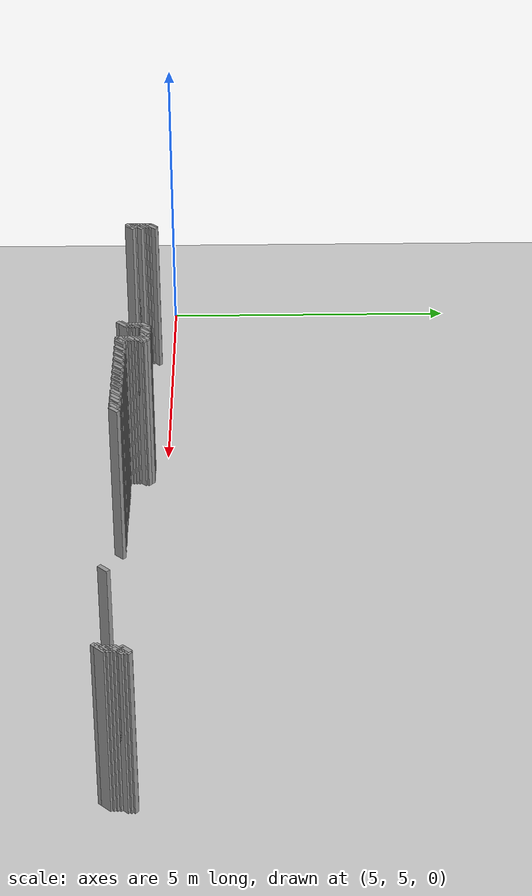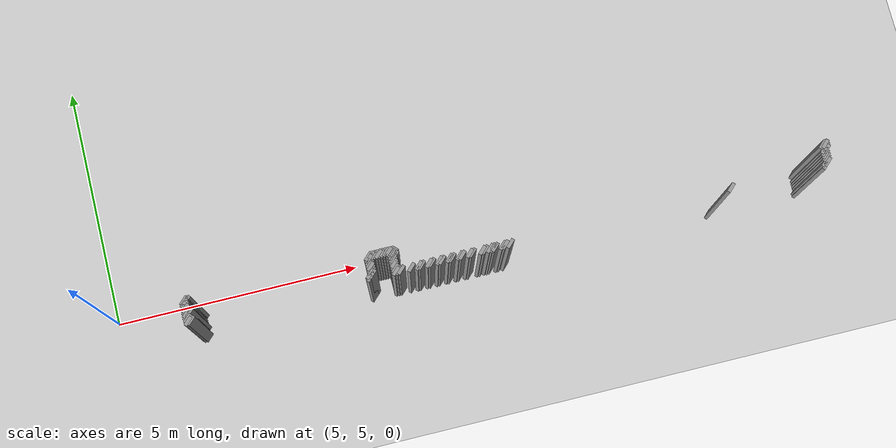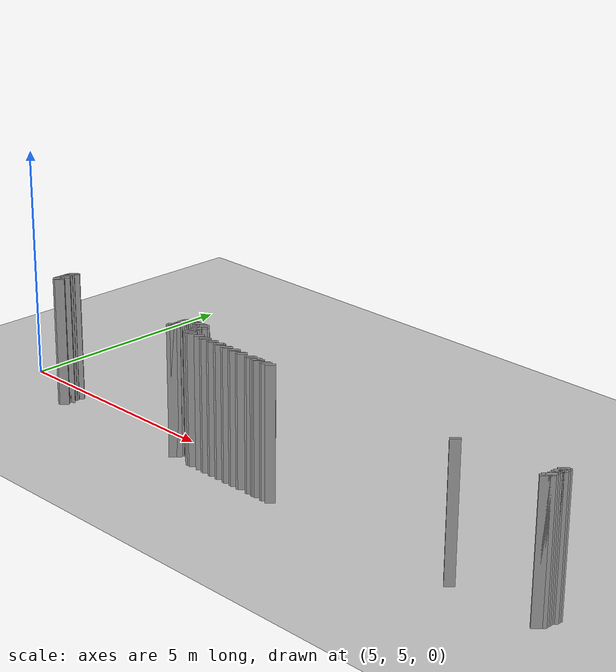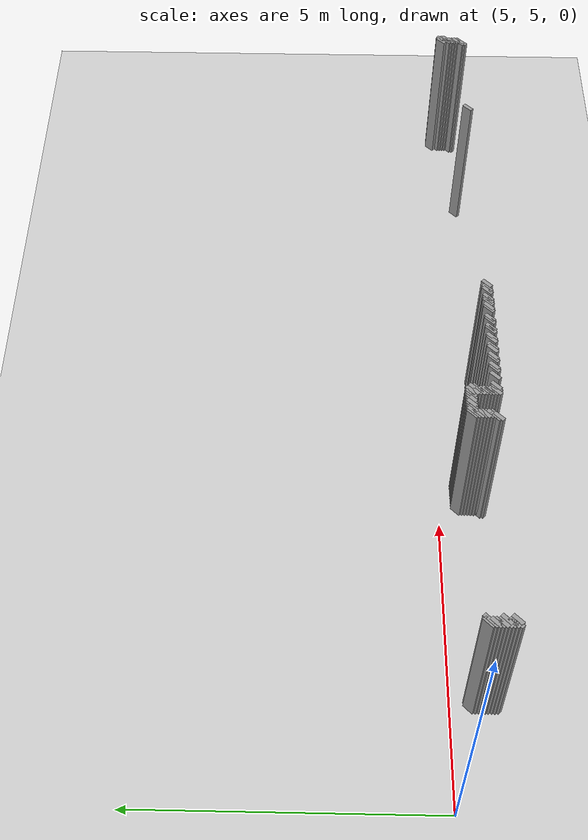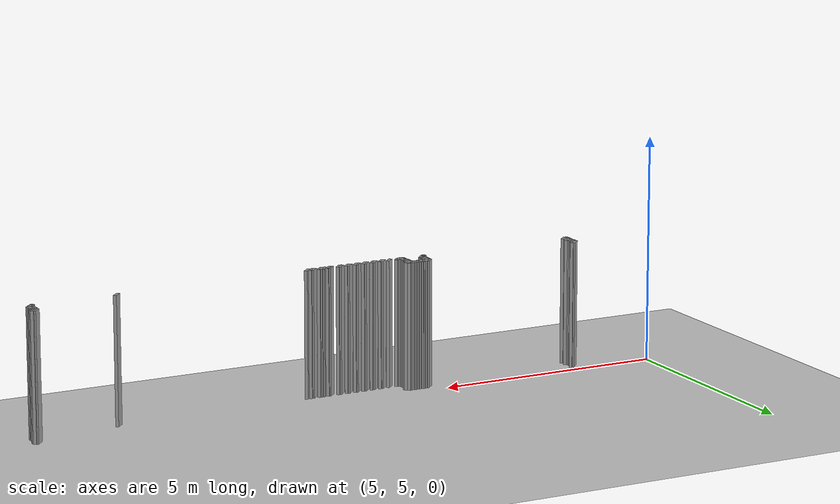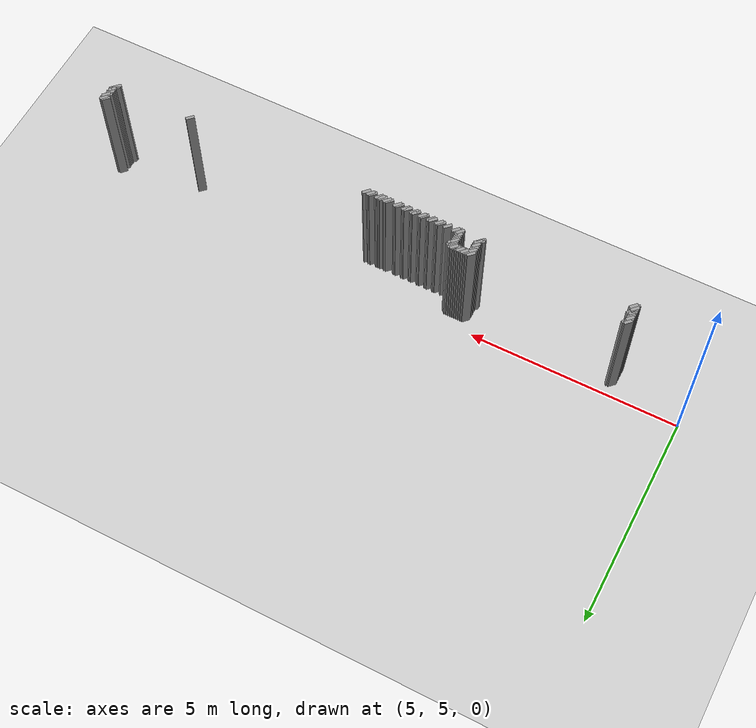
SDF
<sdf version="1.5">
 <world name="default">
  <include><uri>model://ground_plane</uri></include>
  <include><uri>model://sun</uri></include>
  <model name="grey_wall_2101">
   <static>1</static>
   <link name="link">
    <pose>19.35 4.75  1.4 0 0 -0.785398163397</pose>
    <collision name="collision"><geometry><box><size>0.0707106781187 .2  2.8</size></box></geometry></collision>
    <visual name="visual">
     <cast_shadows>0</cast_shadows>
     <geometry><box><size>0.0707106781187 .2  2.8</size></box></geometry>
     <material>
      <script>
       <uri>model://grey_wall/materials/scripts</uri>
       <uri>model://grey_wall/materials/textures</uri>
       <name>vrc/grey_wall</name>
      </script>
     </material>
    </visual>
   </link>
  </model>
  <model name="grey_wall_2102">
   <static>1</static>
   <link name="link">
    <pose>19.4 4.75  1.4 0 0 -0.785398163397</pose>
    <collision name="collision"><geometry><box><size>0.0707106781187 .2  2.8</size></box></geometry></collision>
    <visual name="visual">
     <cast_shadows>0</cast_shadows>
     <geometry><box><size>0.0707106781187 .2  2.8</size></box></geometry>
     <material>
      <script>
       <uri>model://grey_wall/materials/scripts</uri>
       <uri>model://grey_wall/materials/textures</uri>
       <name>vrc/grey_wall</name>
      </script>
     </material>
    </visual>
   </link>
  </model>
  <model name="grey_wall_2103">
   <static>1</static>
   <link name="link">
    <pose>6.7 4.7  1.4 0 0 -0.785398163397</pose>
    <collision name="collision"><geometry><box><size>0.0707106781187 .2  2.8</size></box></geometry></collision>
    <visual name="visual">
     <cast_shadows>0</cast_shadows>
     <geometry><box><size>0.0707106781187 .2  2.8</size></box></geometry>
     <material>
      <script>
       <uri>model://grey_wall/materials/scripts</uri>
       <uri>model://grey_wall/materials/textures</uri>
       <name>vrc/grey_wall</name>
      </script>
     </material>
    </visual>
   </link>
  </model>
  <model name="grey_wall_2104">
   <static>1</static>
   <link name="link">
    <pose>6.75 4.7  1.4 0 0 -0.785398163397</pose>
    <collision name="collision"><geometry><box><size>0.0707106781187 .2  2.8</size></box></geometry></collision>
    <visual name="visual">
     <cast_shadows>0</cast_shadows>
     <geometry><box><size>0.0707106781187 .2  2.8</size></box></geometry>
     <material>
      <script>
       <uri>model://grey_wall/materials/scripts</uri>
       <uri>model://grey_wall/materials/textures</uri>
       <name>vrc/grey_wall</name>
      </script>
     </material>
    </visual>
   </link>
  </model>
  <model name="grey_wall_2105">
   <static>1</static>
   <link name="link">
    <pose>10.3 4.7  1.4 0 0 -0.785398163397</pose>
    <collision name="collision"><geometry><box><size>0.0707106781187 .2  2.8</size></box></geometry></collision>
    <visual name="visual">
     <cast_shadows>0</cast_shadows>
     <geometry><box><size>0.0707106781187 .2  2.8</size></box></geometry>
     <material>
      <script>
       <uri>model://grey_wall/materials/scripts</uri>
       <uri>model://grey_wall/materials/textures</uri>
       <name>vrc/grey_wall</name>
      </script>
     </material>
    </visual>
   </link>
  </model>
  <model name="grey_wall_2106">
   <static>1</static>
   <link name="link">
    <pose>10.35 4.7  1.4 0 0 -0.785398163397</pose>
    <collision name="collision"><geometry><box><size>0.0707106781187 .2  2.8</size></box></geometry></collision>
    <visual name="visual">
     <cast_shadows>0</cast_shadows>
     <geometry><box><size>0.0707106781187 .2  2.8</size></box></geometry>
     <material>
      <script>
       <uri>model://grey_wall/materials/scripts</uri>
       <uri>model://grey_wall/materials/textures</uri>
       <name>vrc/grey_wall</name>
      </script>
     </material>
    </visual>
   </link>
  </model>
  <model name="grey_wall_2107">
   <static>1</static>
   <link name="link">
    <pose>10.4 4.7  1.4 0 0 -0.785398163397</pose>
    <collision name="collision"><geometry><box><size>0.0707106781187 .2  2.8</size></box></geometry></collision>
    <visual name="visual">
     <cast_shadows>0</cast_shadows>
     <geometry><box><size>0.0707106781187 .2  2.8</size></box></geometry>
     <material>
      <script>
       <uri>model://grey_wall/materials/scripts</uri>
       <uri>model://grey_wall/materials/textures</uri>
       <name>vrc/grey_wall</name>
      </script>
     </material>
    </visual>
   </link>
  </model>
  <model name="grey_wall_2108">
   <static>1</static>
   <link name="link">
    <pose>10.45 4.7  1.4 0 0 -0.785398163397</pose>
    <collision name="collision"><geometry><box><size>0.0707106781187 .2  2.8</size></box></geometry></collision>
    <visual name="visual">
     <cast_shadows>0</cast_shadows>
     <geometry><box><size>0.0707106781187 .2  2.8</size></box></geometry>
     <material>
      <script>
       <uri>model://grey_wall/materials/scripts</uri>
       <uri>model://grey_wall/materials/textures</uri>
       <name>vrc/grey_wall</name>
      </script>
     </material>
    </visual>
   </link>
  </model>
  <model name="grey_wall_2109">
   <static>1</static>
   <link name="link">
    <pose>10.5 4.7  1.4 0 0 -0.785398163397</pose>
    <collision name="collision"><geometry><box><size>0.0707106781187 .2  2.8</size></box></geometry></collision>
    <visual name="visual">
     <cast_shadows>0</cast_shadows>
     <geometry><box><size>0.0707106781187 .2  2.8</size></box></geometry>
     <material>
      <script>
       <uri>model://grey_wall/materials/scripts</uri>
       <uri>model://grey_wall/materials/textures</uri>
       <name>vrc/grey_wall</name>
      </script>
     </material>
    </visual>
   </link>
  </model>
  <model name="grey_wall_2110">
   <static>1</static>
   <link name="link">
    <pose>10.55 4.7  1.4 0 0 -0.785398163397</pose>
    <collision name="collision"><geometry><box><size>0.0707106781187 .2  2.8</size></box></geometry></collision>
    <visual name="visual">
     <cast_shadows>0</cast_shadows>
     <geometry><box><size>0.0707106781187 .2  2.8</size></box></geometry>
     <material>
      <script>
       <uri>model://grey_wall/materials/scripts</uri>
       <uri>model://grey_wall/materials/textures</uri>
       <name>vrc/grey_wall</name>
      </script>
     </material>
    </visual>
   </link>
  </model>
  <model name="grey_wall_2111">
   <static>1</static>
   <link name="link">
    <pose>10.6 4.7  1.4 0 0 -0.785398163397</pose>
    <collision name="collision"><geometry><box><size>0.0707106781187 .2  2.8</size></box></geometry></collision>
    <visual name="visual">
     <cast_shadows>0</cast_shadows>
     <geometry><box><size>0.0707106781187 .2  2.8</size></box></geometry>
     <material>
      <script>
       <uri>model://grey_wall/materials/scripts</uri>
       <uri>model://grey_wall/materials/textures</uri>
       <name>vrc/grey_wall</name>
      </script>
     </material>
    </visual>
   </link>
  </model>
  <model name="grey_wall_2112">
   <static>1</static>
   <link name="link">
    <pose>10.65 4.7  1.4 0 0 -0.785398163397</pose>
    <collision name="collision"><geometry><box><size>0.0707106781187 .2  2.8</size></box></geometry></collision>
    <visual name="visual">
     <cast_shadows>0</cast_shadows>
     <geometry><box><size>0.0707106781187 .2  2.8</size></box></geometry>
     <material>
      <script>
       <uri>model://grey_wall/materials/scripts</uri>
       <uri>model://grey_wall/materials/textures</uri>
       <name>vrc/grey_wall</name>
      </script>
     </material>
    </visual>
   </link>
  </model>
  <model name="grey_wall_2113">
   <static>1</static>
   <link name="link">
    <pose>10.7 4.7  1.4 0 0 -0.785398163397</pose>
    <collision name="collision"><geometry><box><size>0.0707106781187 .2  2.8</size></box></geometry></collision>
    <visual name="visual">
     <cast_shadows>0</cast_shadows>
     <geometry><box><size>0.0707106781187 .2  2.8</size></box></geometry>
     <material>
      <script>
       <uri>model://grey_wall/materials/scripts</uri>
       <uri>model://grey_wall/materials/textures</uri>
       <name>vrc/grey_wall</name>
      </script>
     </material>
    </visual>
   </link>
  </model>
  <model name="grey_wall_2114">
   <static>1</static>
   <link name="link">
    <pose>10.75 4.7  1.4 0 0 -0.785398163397</pose>
    <collision name="collision"><geometry><box><size>0.0707106781187 .2  2.8</size></box></geometry></collision>
    <visual name="visual">
     <cast_shadows>0</cast_shadows>
     <geometry><box><size>0.0707106781187 .2  2.8</size></box></geometry>
     <material>
      <script>
       <uri>model://grey_wall/materials/scripts</uri>
       <uri>model://grey_wall/materials/textures</uri>
       <name>vrc/grey_wall</name>
      </script>
     </material>
    </visual>
   </link>
  </model>
  <model name="grey_wall_2115">
   <static>1</static>
   <link name="link">
    <pose>19.4 4.7  1.4 0 0 -0.785398163397</pose>
    <collision name="collision"><geometry><box><size>0.0707106781187 .2  2.8</size></box></geometry></collision>
    <visual name="visual">
     <cast_shadows>0</cast_shadows>
     <geometry><box><size>0.0707106781187 .2  2.8</size></box></geometry>
     <material>
      <script>
       <uri>model://grey_wall/materials/scripts</uri>
       <uri>model://grey_wall/materials/textures</uri>
       <name>vrc/grey_wall</name>
      </script>
     </material>
    </visual>
   </link>
  </model>
  <model name="grey_wall_2116">
   <static>1</static>
   <link name="link">
    <pose>6.7 4.65  1.4 0 0 -0.785398163397</pose>
    <collision name="collision"><geometry><box><size>0.0707106781187 .2  2.8</size></box></geometry></collision>
    <visual name="visual">
     <cast_shadows>0</cast_shadows>
     <geometry><box><size>0.0707106781187 .2  2.8</size></box></geometry>
     <material>
      <script>
       <uri>model://grey_wall/materials/scripts</uri>
       <uri>model://grey_wall/materials/textures</uri>
       <name>vrc/grey_wall</name>
      </script>
     </material>
    </visual>
   </link>
  </model>
  <model name="grey_wall_2117">
   <static>1</static>
   <link name="link">
    <pose>10.3 4.65  1.4 0 0 -0.785398163397</pose>
    <collision name="collision"><geometry><box><size>0.0707106781187 .2  2.8</size></box></geometry></collision>
    <visual name="visual">
     <cast_shadows>0</cast_shadows>
     <geometry><box><size>0.0707106781187 .2  2.8</size></box></geometry>
     <material>
      <script>
       <uri>model://grey_wall/materials/scripts</uri>
       <uri>model://grey_wall/materials/textures</uri>
       <name>vrc/grey_wall</name>
      </script>
     </material>
    </visual>
   </link>
  </model>
  <model name="grey_wall_2118">
   <static>1</static>
   <link name="link">
    <pose>10.75 4.65  1.4 0 0 -0.785398163397</pose>
    <collision name="collision"><geometry><box><size>0.0707106781187 .2  2.8</size></box></geometry></collision>
    <visual name="visual">
     <cast_shadows>0</cast_shadows>
     <geometry><box><size>0.0707106781187 .2  2.8</size></box></geometry>
     <material>
      <script>
       <uri>model://grey_wall/materials/scripts</uri>
       <uri>model://grey_wall/materials/textures</uri>
       <name>vrc/grey_wall</name>
      </script>
     </material>
    </visual>
   </link>
  </model>
  <model name="grey_wall_2119">
   <static>1</static>
   <link name="link">
    <pose>10.8 4.65  1.4 0 0 -0.785398163397</pose>
    <collision name="collision"><geometry><box><size>0.0707106781187 .2  2.8</size></box></geometry></collision>
    <visual name="visual">
     <cast_shadows>0</cast_shadows>
     <geometry><box><size>0.0707106781187 .2  2.8</size></box></geometry>
     <material>
      <script>
       <uri>model://grey_wall/materials/scripts</uri>
       <uri>model://grey_wall/materials/textures</uri>
       <name>vrc/grey_wall</name>
      </script>
     </material>
    </visual>
   </link>
  </model>
  <model name="grey_wall_2120">
   <static>1</static>
   <link name="link">
    <pose>19.35 4.65  1.4 0 0 -0.785398163397</pose>
    <collision name="collision"><geometry><box><size>0.0707106781187 .2  2.8</size></box></geometry></collision>
    <visual name="visual">
     <cast_shadows>0</cast_shadows>
     <geometry><box><size>0.0707106781187 .2  2.8</size></box></geometry>
     <material>
      <script>
       <uri>model://grey_wall/materials/scripts</uri>
       <uri>model://grey_wall/materials/textures</uri>
       <name>vrc/grey_wall</name>
      </script>
     </material>
    </visual>
   </link>
  </model>
  <model name="grey_wall_2121">
   <static>1</static>
   <link name="link">
    <pose>19.4 4.65  1.4 0 0 -0.785398163397</pose>
    <collision name="collision"><geometry><box><size>0.0707106781187 .2  2.8</size></box></geometry></collision>
    <visual name="visual">
     <cast_shadows>0</cast_shadows>
     <geometry><box><size>0.0707106781187 .2  2.8</size></box></geometry>
     <material>
      <script>
       <uri>model://grey_wall/materials/scripts</uri>
       <uri>model://grey_wall/materials/textures</uri>
       <name>vrc/grey_wall</name>
      </script>
     </material>
    </visual>
   </link>
  </model>
  <model name="grey_wall_2122">
   <static>1</static>
   <link name="link">
    <pose>6.7 4.6  1.4 0 0 -0.785398163397</pose>
    <collision name="collision"><geometry><box><size>0.0707106781187 .2  2.8</size></box></geometry></collision>
    <visual name="visual">
     <cast_shadows>0</cast_shadows>
     <geometry><box><size>0.0707106781187 .2  2.8</size></box></geometry>
     <material>
      <script>
       <uri>model://grey_wall/materials/scripts</uri>
       <uri>model://grey_wall/materials/textures</uri>
       <name>vrc/grey_wall</name>
      </script>
     </material>
    </visual>
   </link>
  </model>
  <model name="grey_wall_2123">
   <static>1</static>
   <link name="link">
    <pose>10.3 4.6  1.4 0 0 -0.785398163397</pose>
    <collision name="collision"><geometry><box><size>0.0707106781187 .2  2.8</size></box></geometry></collision>
    <visual name="visual">
     <cast_shadows>0</cast_shadows>
     <geometry><box><size>0.0707106781187 .2  2.8</size></box></geometry>
     <material>
      <script>
       <uri>model://grey_wall/materials/scripts</uri>
       <uri>model://grey_wall/materials/textures</uri>
       <name>vrc/grey_wall</name>
      </script>
     </material>
    </visual>
   </link>
  </model>
  <model name="grey_wall_2124">
   <static>1</static>
   <link name="link">
    <pose>10.75 4.6  1.4 0 0 -0.785398163397</pose>
    <collision name="collision"><geometry><box><size>0.0707106781187 .2  2.8</size></box></geometry></collision>
    <visual name="visual">
     <cast_shadows>0</cast_shadows>
     <geometry><box><size>0.0707106781187 .2  2.8</size></box></geometry>
     <material>
      <script>
       <uri>model://grey_wall/materials/scripts</uri>
       <uri>model://grey_wall/materials/textures</uri>
       <name>vrc/grey_wall</name>
      </script>
     </material>
    </visual>
   </link>
  </model>
  <model name="grey_wall_2125">
   <static>1</static>
   <link name="link">
    <pose>10.8 4.6  1.4 0 0 -0.785398163397</pose>
    <collision name="collision"><geometry><box><size>0.0707106781187 .2  2.8</size></box></geometry></collision>
    <visual name="visual">
     <cast_shadows>0</cast_shadows>
     <geometry><box><size>0.0707106781187 .2  2.8</size></box></geometry>
     <material>
      <script>
       <uri>model://grey_wall/materials/scripts</uri>
       <uri>model://grey_wall/materials/textures</uri>
       <name>vrc/grey_wall</name>
      </script>
     </material>
    </visual>
   </link>
  </model>
  <model name="grey_wall_2126">
   <static>1</static>
   <link name="link">
    <pose>19.35 4.6  1.4 0 0 -0.785398163397</pose>
    <collision name="collision"><geometry><box><size>0.0707106781187 .2  2.8</size></box></geometry></collision>
    <visual name="visual">
     <cast_shadows>0</cast_shadows>
     <geometry><box><size>0.0707106781187 .2  2.8</size></box></geometry>
     <material>
      <script>
       <uri>model://grey_wall/materials/scripts</uri>
       <uri>model://grey_wall/materials/textures</uri>
       <name>vrc/grey_wall</name>
      </script>
     </material>
    </visual>
   </link>
  </model>
  <model name="grey_wall_2127">
   <static>1</static>
   <link name="link">
    <pose>6.7 4.55  1.4 0 0 -0.785398163397</pose>
    <collision name="collision"><geometry><box><size>0.0707106781187 .2  2.8</size></box></geometry></collision>
    <visual name="visual">
     <cast_shadows>0</cast_shadows>
     <geometry><box><size>0.0707106781187 .2  2.8</size></box></geometry>
     <material>
      <script>
       <uri>model://grey_wall/materials/scripts</uri>
       <uri>model://grey_wall/materials/textures</uri>
       <name>vrc/grey_wall</name>
      </script>
     </material>
    </visual>
   </link>
  </model>
  <model name="grey_wall_2128">
   <static>1</static>
   <link name="link">
    <pose>10.3 4.55  1.4 0 0 -0.785398163397</pose>
    <collision name="collision"><geometry><box><size>0.0707106781187 .2  2.8</size></box></geometry></collision>
    <visual name="visual">
     <cast_shadows>0</cast_shadows>
     <geometry><box><size>0.0707106781187 .2  2.8</size></box></geometry>
     <material>
      <script>
       <uri>model://grey_wall/materials/scripts</uri>
       <uri>model://grey_wall/materials/textures</uri>
       <name>vrc/grey_wall</name>
      </script>
     </material>
    </visual>
   </link>
  </model>
  <model name="grey_wall_2129">
   <static>1</static>
   <link name="link">
    <pose>10.75 4.55  1.4 0 0 -0.785398163397</pose>
    <collision name="collision"><geometry><box><size>0.0707106781187 .2  2.8</size></box></geometry></collision>
    <visual name="visual">
     <cast_shadows>0</cast_shadows>
     <geometry><box><size>0.0707106781187 .2  2.8</size></box></geometry>
     <material>
      <script>
       <uri>model://grey_wall/materials/scripts</uri>
       <uri>model://grey_wall/materials/textures</uri>
       <name>vrc/grey_wall</name>
      </script>
     </material>
    </visual>
   </link>
  </model>
  <model name="grey_wall_2130">
   <static>1</static>
   <link name="link">
    <pose>19.35 4.55  1.4 0 0 -0.785398163397</pose>
    <collision name="collision"><geometry><box><size>0.0707106781187 .2  2.8</size></box></geometry></collision>
    <visual name="visual">
     <cast_shadows>0</cast_shadows>
     <geometry><box><size>0.0707106781187 .2  2.8</size></box></geometry>
     <material>
      <script>
       <uri>model://grey_wall/materials/scripts</uri>
       <uri>model://grey_wall/materials/textures</uri>
       <name>vrc/grey_wall</name>
      </script>
     </material>
    </visual>
   </link>
  </model>
  <model name="grey_wall_2131">
   <static>1</static>
   <link name="link">
    <pose>6.7 4.5  1.4 0 0 -0.785398163397</pose>
    <collision name="collision"><geometry><box><size>0.0707106781187 .2  2.8</size></box></geometry></collision>
    <visual name="visual">
     <cast_shadows>0</cast_shadows>
     <geometry><box><size>0.0707106781187 .2  2.8</size></box></geometry>
     <material>
      <script>
       <uri>model://grey_wall/materials/scripts</uri>
       <uri>model://grey_wall/materials/textures</uri>
       <name>vrc/grey_wall</name>
      </script>
     </material>
    </visual>
   </link>
  </model>
  <model name="grey_wall_2132">
   <static>1</static>
   <link name="link">
    <pose>10.3 4.5  1.4 0 0 -0.785398163397</pose>
    <collision name="collision"><geometry><box><size>0.0707106781187 .2  2.8</size></box></geometry></collision>
    <visual name="visual">
     <cast_shadows>0</cast_shadows>
     <geometry><box><size>0.0707106781187 .2  2.8</size></box></geometry>
     <material>
      <script>
       <uri>model://grey_wall/materials/scripts</uri>
       <uri>model://grey_wall/materials/textures</uri>
       <name>vrc/grey_wall</name>
      </script>
     </material>
    </visual>
   </link>
  </model>
  <model name="grey_wall_2133">
   <static>1</static>
   <link name="link">
    <pose>10.75 4.5  1.4 0 0 -0.785398163397</pose>
    <collision name="collision"><geometry><box><size>0.0707106781187 .2  2.8</size></box></geometry></collision>
    <visual name="visual">
     <cast_shadows>0</cast_shadows>
     <geometry><box><size>0.0707106781187 .2  2.8</size></box></geometry>
     <material>
      <script>
       <uri>model://grey_wall/materials/scripts</uri>
       <uri>model://grey_wall/materials/textures</uri>
       <name>vrc/grey_wall</name>
      </script>
     </material>
    </visual>
   </link>
  </model>
  <model name="grey_wall_2134">
   <static>1</static>
   <link name="link">
    <pose>19.35 4.5  1.4 0 0 -0.785398163397</pose>
    <collision name="collision"><geometry><box><size>0.0707106781187 .2  2.8</size></box></geometry></collision>
    <visual name="visual">
     <cast_shadows>0</cast_shadows>
     <geometry><box><size>0.0707106781187 .2  2.8</size></box></geometry>
     <material>
      <script>
       <uri>model://grey_wall/materials/scripts</uri>
       <uri>model://grey_wall/materials/textures</uri>
       <name>vrc/grey_wall</name>
      </script>
     </material>
    </visual>
   </link>
  </model>
  <model name="grey_wall_2135">
   <static>1</static>
   <link name="link">
    <pose>6.7 4.45  1.4 0 0 -0.785398163397</pose>
    <collision name="collision"><geometry><box><size>0.0707106781187 .2  2.8</size></box></geometry></collision>
    <visual name="visual">
     <cast_shadows>0</cast_shadows>
     <geometry><box><size>0.0707106781187 .2  2.8</size></box></geometry>
     <material>
      <script>
       <uri>model://grey_wall/materials/scripts</uri>
       <uri>model://grey_wall/materials/textures</uri>
       <name>vrc/grey_wall</name>
      </script>
     </material>
    </visual>
   </link>
  </model>
  <model name="grey_wall_2136">
   <static>1</static>
   <link name="link">
    <pose>6.75 4.45  1.4 0 0 -0.785398163397</pose>
    <collision name="collision"><geometry><box><size>0.0707106781187 .2  2.8</size></box></geometry></collision>
    <visual name="visual">
     <cast_shadows>0</cast_shadows>
     <geometry><box><size>0.0707106781187 .2  2.8</size></box></geometry>
     <material>
      <script>
       <uri>model://grey_wall/materials/scripts</uri>
       <uri>model://grey_wall/materials/textures</uri>
       <name>vrc/grey_wall</name>
      </script>
     </material>
    </visual>
   </link>
  </model>
  <model name="grey_wall_2137">
   <static>1</static>
   <link name="link">
    <pose>10.3 4.45  1.4 0 0 -0.785398163397</pose>
    <collision name="collision"><geometry><box><size>0.0707106781187 .2  2.8</size></box></geometry></collision>
    <visual name="visual">
     <cast_shadows>0</cast_shadows>
     <geometry><box><size>0.0707106781187 .2  2.8</size></box></geometry>
     <material>
      <script>
       <uri>model://grey_wall/materials/scripts</uri>
       <uri>model://grey_wall/materials/textures</uri>
       <name>vrc/grey_wall</name>
      </script>
     </material>
    </visual>
   </link>
  </model>
  <model name="grey_wall_2138">
   <static>1</static>
   <link name="link">
    <pose>10.75 4.45  1.4 0 0 -0.785398163397</pose>
    <collision name="collision"><geometry><box><size>0.0707106781187 .2  2.8</size></box></geometry></collision>
    <visual name="visual">
     <cast_shadows>0</cast_shadows>
     <geometry><box><size>0.0707106781187 .2  2.8</size></box></geometry>
     <material>
      <script>
       <uri>model://grey_wall/materials/scripts</uri>
       <uri>model://grey_wall/materials/textures</uri>
       <name>vrc/grey_wall</name>
      </script>
     </material>
    </visual>
   </link>
  </model>
  <model name="grey_wall_2139">
   <static>1</static>
   <link name="link">
    <pose>19.35 4.45  1.4 0 0 -0.785398163397</pose>
    <collision name="collision"><geometry><box><size>0.0707106781187 .2  2.8</size></box></geometry></collision>
    <visual name="visual">
     <cast_shadows>0</cast_shadows>
     <geometry><box><size>0.0707106781187 .2  2.8</size></box></geometry>
     <material>
      <script>
       <uri>model://grey_wall/materials/scripts</uri>
       <uri>model://grey_wall/materials/textures</uri>
       <name>vrc/grey_wall</name>
      </script>
     </material>
    </visual>
   </link>
  </model>
  <model name="grey_wall_2140">
   <static>1</static>
   <link name="link">
    <pose>6.7 4.4  1.4 0 0 -0.785398163397</pose>
    <collision name="collision"><geometry><box><size>0.0707106781187 .2  2.8</size></box></geometry></collision>
    <visual name="visual">
     <cast_shadows>0</cast_shadows>
     <geometry><box><size>0.0707106781187 .2  2.8</size></box></geometry>
     <material>
      <script>
       <uri>model://grey_wall/materials/scripts</uri>
       <uri>model://grey_wall/materials/textures</uri>
       <name>vrc/grey_wall</name>
      </script>
     </material>
    </visual>
   </link>
  </model>
  <model name="grey_wall_2141">
   <static>1</static>
   <link name="link">
    <pose>10.3 4.4  1.4 0 0 -0.785398163397</pose>
    <collision name="collision"><geometry><box><size>0.0707106781187 .2  2.8</size></box></geometry></collision>
    <visual name="visual">
     <cast_shadows>0</cast_shadows>
     <geometry><box><size>0.0707106781187 .2  2.8</size></box></geometry>
     <material>
      <script>
       <uri>model://grey_wall/materials/scripts</uri>
       <uri>model://grey_wall/materials/textures</uri>
       <name>vrc/grey_wall</name>
      </script>
     </material>
    </visual>
   </link>
  </model>
  <model name="grey_wall_2142">
   <static>1</static>
   <link name="link">
    <pose>10.75 4.4  1.4 0 0 -0.785398163397</pose>
    <collision name="collision"><geometry><box><size>0.0707106781187 .2  2.8</size></box></geometry></collision>
    <visual name="visual">
     <cast_shadows>0</cast_shadows>
     <geometry><box><size>0.0707106781187 .2  2.8</size></box></geometry>
     <material>
      <script>
       <uri>model://grey_wall/materials/scripts</uri>
       <uri>model://grey_wall/materials/textures</uri>
       <name>vrc/grey_wall</name>
      </script>
     </material>
    </visual>
   </link>
  </model>
  <model name="grey_wall_2143">
   <static>1</static>
   <link name="link">
    <pose>19.3 4.4  1.4 0 0 -0.785398163397</pose>
    <collision name="collision"><geometry><box><size>0.0707106781187 .2  2.8</size></box></geometry></collision>
    <visual name="visual">
     <cast_shadows>0</cast_shadows>
     <geometry><box><size>0.0707106781187 .2  2.8</size></box></geometry>
     <material>
      <script>
       <uri>model://grey_wall/materials/scripts</uri>
       <uri>model://grey_wall/materials/textures</uri>
       <name>vrc/grey_wall</name>
      </script>
     </material>
    </visual>
   </link>
  </model>
  <model name="grey_wall_2144">
   <static>1</static>
   <link name="link">
    <pose>19.35 4.4  1.4 0 0 -0.785398163397</pose>
    <collision name="collision"><geometry><box><size>0.0707106781187 .2  2.8</size></box></geometry></collision>
    <visual name="visual">
     <cast_shadows>0</cast_shadows>
     <geometry><box><size>0.0707106781187 .2  2.8</size></box></geometry>
     <material>
      <script>
       <uri>model://grey_wall/materials/scripts</uri>
       <uri>model://grey_wall/materials/textures</uri>
       <name>vrc/grey_wall</name>
      </script>
     </material>
    </visual>
   </link>
  </model>
  <model name="grey_wall_2145">
   <static>1</static>
   <link name="link">
    <pose>6.7 4.35  1.4 0 0 -0.785398163397</pose>
    <collision name="collision"><geometry><box><size>0.0707106781187 .2  2.8</size></box></geometry></collision>
    <visual name="visual">
     <cast_shadows>0</cast_shadows>
     <geometry><box><size>0.0707106781187 .2  2.8</size></box></geometry>
     <material>
      <script>
       <uri>model://grey_wall/materials/scripts</uri>
       <uri>model://grey_wall/materials/textures</uri>
       <name>vrc/grey_wall</name>
      </script>
     </material>
    </visual>
   </link>
  </model>
  <model name="grey_wall_2146">
   <static>1</static>
   <link name="link">
    <pose>10.25 4.35  1.4 0 0 -0.785398163397</pose>
    <collision name="collision"><geometry><box><size>0.0707106781187 .2  2.8</size></box></geometry></collision>
    <visual name="visual">
     <cast_shadows>0</cast_shadows>
     <geometry><box><size>0.0707106781187 .2  2.8</size></box></geometry>
     <material>
      <script>
       <uri>model://grey_wall/materials/scripts</uri>
       <uri>model://grey_wall/materials/textures</uri>
       <name>vrc/grey_wall</name>
      </script>
     </material>
    </visual>
   </link>
  </model>
  <model name="grey_wall_2147">
   <static>1</static>
   <link name="link">
    <pose>10.3 4.35  1.4 0 0 -0.785398163397</pose>
    <collision name="collision"><geometry><box><size>0.0707106781187 .2  2.8</size></box></geometry></collision>
    <visual name="visual">
     <cast_shadows>0</cast_shadows>
     <geometry><box><size>0.0707106781187 .2  2.8</size></box></geometry>
     <material>
      <script>
       <uri>model://grey_wall/materials/scripts</uri>
       <uri>model://grey_wall/materials/textures</uri>
       <name>vrc/grey_wall</name>
      </script>
     </material>
    </visual>
   </link>
  </model>
  <model name="grey_wall_2148">
   <static>1</static>
   <link name="link">
    <pose>10.75 4.35  1.4 0 0 -0.785398163397</pose>
    <collision name="collision"><geometry><box><size>0.0707106781187 .2  2.8</size></box></geometry></collision>
    <visual name="visual">
     <cast_shadows>0</cast_shadows>
     <geometry><box><size>0.0707106781187 .2  2.8</size></box></geometry>
     <material>
      <script>
       <uri>model://grey_wall/materials/scripts</uri>
       <uri>model://grey_wall/materials/textures</uri>
       <name>vrc/grey_wall</name>
      </script>
     </material>
    </visual>
   </link>
  </model>
  <model name="grey_wall_2149">
   <static>1</static>
   <link name="link">
    <pose>17.4 4.35  1.4 0 0 -0.785398163397</pose>
    <collision name="collision"><geometry><box><size>0.0707106781187 .2  2.8</size></box></geometry></collision>
    <visual name="visual">
     <cast_shadows>0</cast_shadows>
     <geometry><box><size>0.0707106781187 .2  2.8</size></box></geometry>
     <material>
      <script>
       <uri>model://grey_wall/materials/scripts</uri>
       <uri>model://grey_wall/materials/textures</uri>
       <name>vrc/grey_wall</name>
      </script>
     </material>
    </visual>
   </link>
  </model>
  <model name="grey_wall_2150">
   <static>1</static>
   <link name="link">
    <pose>19.3 4.35  1.4 0 0 -0.785398163397</pose>
    <collision name="collision"><geometry><box><size>0.0707106781187 .2  2.8</size></box></geometry></collision>
    <visual name="visual">
     <cast_shadows>0</cast_shadows>
     <geometry><box><size>0.0707106781187 .2  2.8</size></box></geometry>
     <material>
      <script>
       <uri>model://grey_wall/materials/scripts</uri>
       <uri>model://grey_wall/materials/textures</uri>
       <name>vrc/grey_wall</name>
      </script>
     </material>
    </visual>
   </link>
  </model>
  <model name="grey_wall_2151">
   <static>1</static>
   <link name="link">
    <pose>6.7 4.3  1.4 0 0 -0.785398163397</pose>
    <collision name="collision"><geometry><box><size>0.0707106781187 .2  2.8</size></box></geometry></collision>
    <visual name="visual">
     <cast_shadows>0</cast_shadows>
     <geometry><box><size>0.0707106781187 .2  2.8</size></box></geometry>
     <material>
      <script>
       <uri>model://grey_wall/materials/scripts</uri>
       <uri>model://grey_wall/materials/textures</uri>
       <name>vrc/grey_wall</name>
      </script>
     </material>
    </visual>
   </link>
  </model>
  <model name="grey_wall_2152">
   <static>1</static>
   <link name="link">
    <pose>6.75 4.3  1.4 0 0 -0.785398163397</pose>
    <collision name="collision"><geometry><box><size>0.0707106781187 .2  2.8</size></box></geometry></collision>
    <visual name="visual">
     <cast_shadows>0</cast_shadows>
     <geometry><box><size>0.0707106781187 .2  2.8</size></box></geometry>
     <material>
      <script>
       <uri>model://grey_wall/materials/scripts</uri>
       <uri>model://grey_wall/materials/textures</uri>
       <name>vrc/grey_wall</name>
      </script>
     </material>
    </visual>
   </link>
  </model>
  <model name="grey_wall_2153">
   <static>1</static>
   <link name="link">
    <pose>10.25 4.3  1.4 0 0 -0.785398163397</pose>
    <collision name="collision"><geometry><box><size>0.0707106781187 .2  2.8</size></box></geometry></collision>
    <visual name="visual">
     <cast_shadows>0</cast_shadows>
     <geometry><box><size>0.0707106781187 .2  2.8</size></box></geometry>
     <material>
      <script>
       <uri>model://grey_wall/materials/scripts</uri>
       <uri>model://grey_wall/materials/textures</uri>
       <name>vrc/grey_wall</name>
      </script>
     </material>
    </visual>
   </link>
  </model>
  <model name="grey_wall_2154">
   <static>1</static>
   <link name="link">
    <pose>10.75 4.3  1.4 0 0 -0.785398163397</pose>
    <collision name="collision"><geometry><box><size>0.0707106781187 .2  2.8</size></box></geometry></collision>
    <visual name="visual">
     <cast_shadows>0</cast_shadows>
     <geometry><box><size>0.0707106781187 .2  2.8</size></box></geometry>
     <material>
      <script>
       <uri>model://grey_wall/materials/scripts</uri>
       <uri>model://grey_wall/materials/textures</uri>
       <name>vrc/grey_wall</name>
      </script>
     </material>
    </visual>
   </link>
  </model>
  <model name="grey_wall_2155">
   <static>1</static>
   <link name="link">
    <pose>10.8 4.3  1.4 0 0 -0.785398163397</pose>
    <collision name="collision"><geometry><box><size>0.0707106781187 .2  2.8</size></box></geometry></collision>
    <visual name="visual">
     <cast_shadows>0</cast_shadows>
     <geometry><box><size>0.0707106781187 .2  2.8</size></box></geometry>
     <material>
      <script>
       <uri>model://grey_wall/materials/scripts</uri>
       <uri>model://grey_wall/materials/textures</uri>
       <name>vrc/grey_wall</name>
      </script>
     </material>
    </visual>
   </link>
  </model>
  <model name="grey_wall_2156">
   <static>1</static>
   <link name="link">
    <pose>10.85 4.3  1.4 0 0 -0.785398163397</pose>
    <collision name="collision"><geometry><box><size>0.0707106781187 .2  2.8</size></box></geometry></collision>
    <visual name="visual">
     <cast_shadows>0</cast_shadows>
     <geometry><box><size>0.0707106781187 .2  2.8</size></box></geometry>
     <material>
      <script>
       <uri>model://grey_wall/materials/scripts</uri>
       <uri>model://grey_wall/materials/textures</uri>
       <name>vrc/grey_wall</name>
      </script>
     </material>
    </visual>
   </link>
  </model>
  <model name="grey_wall_2157">
   <static>1</static>
   <link name="link">
    <pose>11.05 4.3  1.4 0 0 -0.785398163397</pose>
    <collision name="collision"><geometry><box><size>0.0707106781187 .2  2.8</size></box></geometry></collision>
    <visual name="visual">
     <cast_shadows>0</cast_shadows>
     <geometry><box><size>0.0707106781187 .2  2.8</size></box></geometry>
     <material>
      <script>
       <uri>model://grey_wall/materials/scripts</uri>
       <uri>model://grey_wall/materials/textures</uri>
       <name>vrc/grey_wall</name>
      </script>
     </material>
    </visual>
   </link>
  </model>
  <model name="grey_wall_2158">
   <static>1</static>
   <link name="link">
    <pose>11.2 4.3  1.4 0 0 -0.785398163397</pose>
    <collision name="collision"><geometry><box><size>0.0707106781187 .2  2.8</size></box></geometry></collision>
    <visual name="visual">
     <cast_shadows>0</cast_shadows>
     <geometry><box><size>0.0707106781187 .2  2.8</size></box></geometry>
     <material>
      <script>
       <uri>model://grey_wall/materials/scripts</uri>
       <uri>model://grey_wall/materials/textures</uri>
       <name>vrc/grey_wall</name>
      </script>
     </material>
    </visual>
   </link>
  </model>
  <model name="grey_wall_2159">
   <static>1</static>
   <link name="link">
    <pose>11.25 4.3  1.4 0 0 -0.785398163397</pose>
    <collision name="collision"><geometry><box><size>0.0707106781187 .2  2.8</size></box></geometry></collision>
    <visual name="visual">
     <cast_shadows>0</cast_shadows>
     <geometry><box><size>0.0707106781187 .2  2.8</size></box></geometry>
     <material>
      <script>
       <uri>model://grey_wall/materials/scripts</uri>
       <uri>model://grey_wall/materials/textures</uri>
       <name>vrc/grey_wall</name>
      </script>
     </material>
    </visual>
   </link>
  </model>
  <model name="grey_wall_2160">
   <static>1</static>
   <link name="link">
    <pose>11.4 4.3  1.4 0 0 -0.785398163397</pose>
    <collision name="collision"><geometry><box><size>0.0707106781187 .2  2.8</size></box></geometry></collision>
    <visual name="visual">
     <cast_shadows>0</cast_shadows>
     <geometry><box><size>0.0707106781187 .2  2.8</size></box></geometry>
     <material>
      <script>
       <uri>model://grey_wall/materials/scripts</uri>
       <uri>model://grey_wall/materials/textures</uri>
       <name>vrc/grey_wall</name>
      </script>
     </material>
    </visual>
   </link>
  </model>
  <model name="grey_wall_2161">
   <static>1</static>
   <link name="link">
    <pose>11.45 4.3  1.4 0 0 -0.785398163397</pose>
    <collision name="collision"><geometry><box><size>0.0707106781187 .2  2.8</size></box></geometry></collision>
    <visual name="visual">
     <cast_shadows>0</cast_shadows>
     <geometry><box><size>0.0707106781187 .2  2.8</size></box></geometry>
     <material>
      <script>
       <uri>model://grey_wall/materials/scripts</uri>
       <uri>model://grey_wall/materials/textures</uri>
       <name>vrc/grey_wall</name>
      </script>
     </material>
    </visual>
   </link>
  </model>
  <model name="grey_wall_2162">
   <static>1</static>
   <link name="link">
    <pose>11.6 4.3  1.4 0 0 -0.785398163397</pose>
    <collision name="collision"><geometry><box><size>0.0707106781187 .2  2.8</size></box></geometry></collision>
    <visual name="visual">
     <cast_shadows>0</cast_shadows>
     <geometry><box><size>0.0707106781187 .2  2.8</size></box></geometry>
     <material>
      <script>
       <uri>model://grey_wall/materials/scripts</uri>
       <uri>model://grey_wall/materials/textures</uri>
       <name>vrc/grey_wall</name>
      </script>
     </material>
    </visual>
   </link>
  </model>
  <model name="grey_wall_2163">
   <static>1</static>
   <link name="link">
    <pose>11.65 4.3  1.4 0 0 -0.785398163397</pose>
    <collision name="collision"><geometry><box><size>0.0707106781187 .2  2.8</size></box></geometry></collision>
    <visual name="visual">
     <cast_shadows>0</cast_shadows>
     <geometry><box><size>0.0707106781187 .2  2.8</size></box></geometry>
     <material>
      <script>
       <uri>model://grey_wall/materials/scripts</uri>
       <uri>model://grey_wall/materials/textures</uri>
       <name>vrc/grey_wall</name>
      </script>
     </material>
    </visual>
   </link>
  </model>
  <model name="grey_wall_2164">
   <static>1</static>
   <link name="link">
    <pose>11.8 4.3  1.4 0 0 -0.785398163397</pose>
    <collision name="collision"><geometry><box><size>0.0707106781187 .2  2.8</size></box></geometry></collision>
    <visual name="visual">
     <cast_shadows>0</cast_shadows>
     <geometry><box><size>0.0707106781187 .2  2.8</size></box></geometry>
     <material>
      <script>
       <uri>model://grey_wall/materials/scripts</uri>
       <uri>model://grey_wall/materials/textures</uri>
       <name>vrc/grey_wall</name>
      </script>
     </material>
    </visual>
   </link>
  </model>
  <model name="grey_wall_2165">
   <static>1</static>
   <link name="link">
    <pose>11.85 4.3  1.4 0 0 -0.785398163397</pose>
    <collision name="collision"><geometry><box><size>0.0707106781187 .2  2.8</size></box></geometry></collision>
    <visual name="visual">
     <cast_shadows>0</cast_shadows>
     <geometry><box><size>0.0707106781187 .2  2.8</size></box></geometry>
     <material>
      <script>
       <uri>model://grey_wall/materials/scripts</uri>
       <uri>model://grey_wall/materials/textures</uri>
       <name>vrc/grey_wall</name>
      </script>
     </material>
    </visual>
   </link>
  </model>
  <model name="grey_wall_2166">
   <static>1</static>
   <link name="link">
    <pose>12.0 4.3  1.4 0 0 -0.785398163397</pose>
    <collision name="collision"><geometry><box><size>0.0707106781187 .2  2.8</size></box></geometry></collision>
    <visual name="visual">
     <cast_shadows>0</cast_shadows>
     <geometry><box><size>0.0707106781187 .2  2.8</size></box></geometry>
     <material>
      <script>
       <uri>model://grey_wall/materials/scripts</uri>
       <uri>model://grey_wall/materials/textures</uri>
       <name>vrc/grey_wall</name>
      </script>
     </material>
    </visual>
   </link>
  </model>
  <model name="grey_wall_2167">
   <static>1</static>
   <link name="link">
    <pose>12.05 4.3  1.4 0 0 -0.785398163397</pose>
    <collision name="collision"><geometry><box><size>0.0707106781187 .2  2.8</size></box></geometry></collision>
    <visual name="visual">
     <cast_shadows>0</cast_shadows>
     <geometry><box><size>0.0707106781187 .2  2.8</size></box></geometry>
     <material>
      <script>
       <uri>model://grey_wall/materials/scripts</uri>
       <uri>model://grey_wall/materials/textures</uri>
       <name>vrc/grey_wall</name>
      </script>
     </material>
    </visual>
   </link>
  </model>
  <model name="grey_wall_2168">
   <static>1</static>
   <link name="link">
    <pose>12.2 4.3  1.4 0 0 -0.785398163397</pose>
    <collision name="collision"><geometry><box><size>0.0707106781187 .2  2.8</size></box></geometry></collision>
    <visual name="visual">
     <cast_shadows>0</cast_shadows>
     <geometry><box><size>0.0707106781187 .2  2.8</size></box></geometry>
     <material>
      <script>
       <uri>model://grey_wall/materials/scripts</uri>
       <uri>model://grey_wall/materials/textures</uri>
       <name>vrc/grey_wall</name>
      </script>
     </material>
    </visual>
   </link>
  </model>
  <model name="grey_wall_2169">
   <static>1</static>
   <link name="link">
    <pose>12.25 4.3  1.4 0 0 -0.785398163397</pose>
    <collision name="collision"><geometry><box><size>0.0707106781187 .2  2.8</size></box></geometry></collision>
    <visual name="visual">
     <cast_shadows>0</cast_shadows>
     <geometry><box><size>0.0707106781187 .2  2.8</size></box></geometry>
     <material>
      <script>
       <uri>model://grey_wall/materials/scripts</uri>
       <uri>model://grey_wall/materials/textures</uri>
       <name>vrc/grey_wall</name>
      </script>
     </material>
    </visual>
   </link>
  </model>
  <model name="grey_wall_2170">
   <static>1</static>
   <link name="link">
    <pose>12.45 4.3  1.4 0 0 -0.785398163397</pose>
    <collision name="collision"><geometry><box><size>0.0707106781187 .2  2.8</size></box></geometry></collision>
    <visual name="visual">
     <cast_shadows>0</cast_shadows>
     <geometry><box><size>0.0707106781187 .2  2.8</size></box></geometry>
     <material>
      <script>
       <uri>model://grey_wall/materials/scripts</uri>
       <uri>model://grey_wall/materials/textures</uri>
       <name>vrc/grey_wall</name>
      </script>
     </material>
    </visual>
   </link>
  </model>
  <model name="grey_wall_2171">
   <static>1</static>
   <link name="link">
    <pose>12.5 4.3  1.4 0 0 -0.785398163397</pose>
    <collision name="collision"><geometry><box><size>0.0707106781187 .2  2.8</size></box></geometry></collision>
    <visual name="visual">
     <cast_shadows>0</cast_shadows>
     <geometry><box><size>0.0707106781187 .2  2.8</size></box></geometry>
     <material>
      <script>
       <uri>model://grey_wall/materials/scripts</uri>
       <uri>model://grey_wall/materials/textures</uri>
       <name>vrc/grey_wall</name>
      </script>
     </material>
    </visual>
   </link>
  </model>
  <model name="grey_wall_2172">
   <static>1</static>
   <link name="link">
    <pose>12.6 4.3  1.4 0 0 -0.785398163397</pose>
    <collision name="collision"><geometry><box><size>0.0707106781187 .2  2.8</size></box></geometry></collision>
    <visual name="visual">
     <cast_shadows>0</cast_shadows>
     <geometry><box><size>0.0707106781187 .2  2.8</size></box></geometry>
     <material>
      <script>
       <uri>model://grey_wall/materials/scripts</uri>
       <uri>model://grey_wall/materials/textures</uri>
       <name>vrc/grey_wall</name>
      </script>
     </material>
    </visual>
   </link>
  </model>
  <model name="grey_wall_2173">
   <static>1</static>
   <link name="link">
    <pose>12.65 4.3  1.4 0 0 -0.785398163397</pose>
    <collision name="collision"><geometry><box><size>0.0707106781187 .2  2.8</size></box></geometry></collision>
    <visual name="visual">
     <cast_shadows>0</cast_shadows>
     <geometry><box><size>0.0707106781187 .2  2.8</size></box></geometry>
     <material>
      <script>
       <uri>model://grey_wall/materials/scripts</uri>
       <uri>model://grey_wall/materials/textures</uri>
       <name>vrc/grey_wall</name>
      </script>
     </material>
    </visual>
   </link>
  </model>
  <model name="grey_wall_2174">
   <static>1</static>
   <link name="link">
    <pose>12.7 4.3  1.4 0 0 -0.785398163397</pose>
    <collision name="collision"><geometry><box><size>0.0707106781187 .2  2.8</size></box></geometry></collision>
    <visual name="visual">
     <cast_shadows>0</cast_shadows>
     <geometry><box><size>0.0707106781187 .2  2.8</size></box></geometry>
     <material>
      <script>
       <uri>model://grey_wall/materials/scripts</uri>
       <uri>model://grey_wall/materials/textures</uri>
       <name>vrc/grey_wall</name>
      </script>
     </material>
    </visual>
   </link>
  </model>
  <model name="grey_wall_2175">
   <static>1</static>
   <link name="link">
    <pose>12.85 4.3  1.4 0 0 -0.785398163397</pose>
    <collision name="collision"><geometry><box><size>0.0707106781187 .2  2.8</size></box></geometry></collision>
    <visual name="visual">
     <cast_shadows>0</cast_shadows>
     <geometry><box><size>0.0707106781187 .2  2.8</size></box></geometry>
     <material>
      <script>
       <uri>model://grey_wall/materials/scripts</uri>
       <uri>model://grey_wall/materials/textures</uri>
       <name>vrc/grey_wall</name>
      </script>
     </material>
    </visual>
   </link>
  </model>
  <model name="grey_wall_2176">
   <static>1</static>
   <link name="link">
    <pose>12.9 4.3  1.4 0 0 -0.785398163397</pose>
    <collision name="collision"><geometry><box><size>0.0707106781187 .2  2.8</size></box></geometry></collision>
    <visual name="visual">
     <cast_shadows>0</cast_shadows>
     <geometry><box><size>0.0707106781187 .2  2.8</size></box></geometry>
     <material>
      <script>
       <uri>model://grey_wall/materials/scripts</uri>
       <uri>model://grey_wall/materials/textures</uri>
       <name>vrc/grey_wall</name>
      </script>
     </material>
    </visual>
   </link>
  </model>
  <model name="grey_wall_2177">
   <static>1</static>
   <link name="link">
    <pose>13.0 4.3  1.4 0 0 -0.785398163397</pose>
    <collision name="collision"><geometry><box><size>0.0707106781187 .2  2.8</size></box></geometry></collision>
    <visual name="visual">
     <cast_shadows>0</cast_shadows>
     <geometry><box><size>0.0707106781187 .2  2.8</size></box></geometry>
     <material>
      <script>
       <uri>model://grey_wall/materials/scripts</uri>
       <uri>model://grey_wall/materials/textures</uri>
       <name>vrc/grey_wall</name>
      </script>
     </material>
    </visual>
   </link>
  </model>
 </world>
</sdf>
